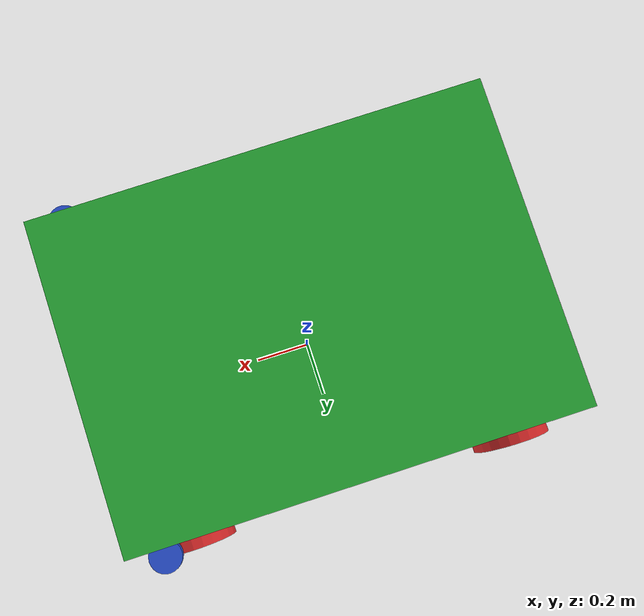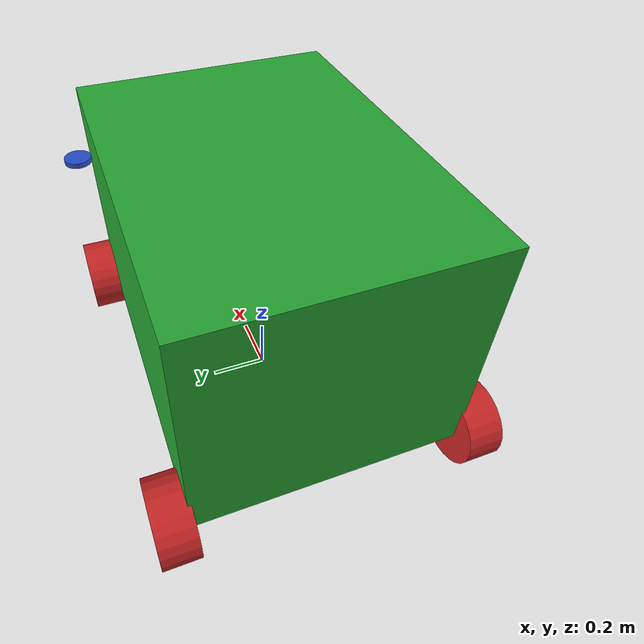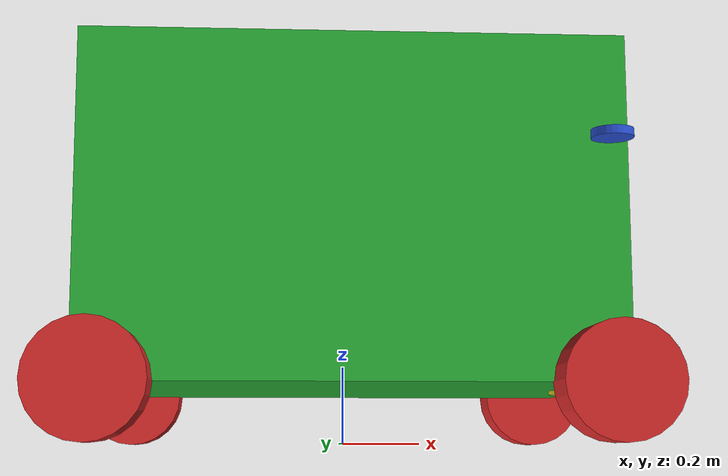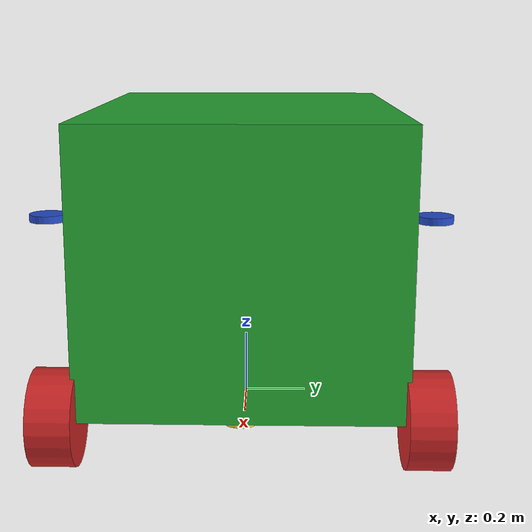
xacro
<?xml version="1.0"?>
<robot name="steer_bot" xmlns:xacro="http://wiki.ros.org/xacro">
  <!-- Include xacro for inertials, materials and wheels -->
  <xacro:include filename="wheel.xacro"/>
  <xacro:include filename="inertial_macros.xacro"/>

  <xacro:property name="robot_namespace" value="/steer_bot"/>

  <!-- Gazebo plugins -->
  <gazebo>
    <!-- Load ros_control plugin using the steer_bot_hardware_gazebo
    implementation of the hardware_interface::RobotHW -->
    <plugin name="gazebo_ros_control" filename="libgazebo_ros_control.so">
      <robotNamespace>${robot_namespace}</robotNamespace>
      <robotSimType>steer_bot_hardware_gazebo/SteerBotHardwareGazebo</robotSimType>
      <legacyModeNS>true</legacyModeNS>
    </plugin>
  </gazebo>

  <!-- Math constants -->
  <xacro:property name="deg_to_rad" value="0.01745329251994329577"/>

  <!-- Robot base dimensions -->
  <xacro:property name="base_length" value="1.3" />
  <xacro:property name="base_width" value="0.94" />
  <xacro:property name="base_height" value="0.83" />
  <xacro:property name="base_mass" value="35" />
  <xacro:property name="PI" value="3.1415926535897931"/>

  <!-- Wheel link dimensions -->
  <xacro:property name="wheel_radius" value="0.1397" />
  <xacro:property name="wheel_thickness" value="0.125" />
  <xacro:property name="wheel_mass" value="8" />

  <!-- Steering link dimensions -->
  <xacro:property name="steer_radius" value="0.05" />
  <xacro:property name="steer_thickness" value="0.02" />
  <xacro:property name="steer_mass" value="1" />

  <!-- Axle positions -->
  <xacro:property name="axle_offset" value="0.05" />
  <xacro:property name="steer_offset" value="0.02" />
  <xacro:property name="wheel_offset_x" value="0.226"/>
  <xacro:property name="wheel_offset_y" value="0.1485"/>
  <xacro:property name="wheel_offset_z" value="0.01"/>

  <!-- BASE LINK -->

  <link name="base_link">
  </link>

  <!-- BASE_FOOTPRINT LINK -->

  <joint name="base_footprint_joint" type="fixed">
      <parent link="base_link"/>
      <child link="base_footprint"/>
      <origin xyz="0 0 0" rpy="0 0 0"/>
  </joint>

  <link name="base_footprint">
  </link>

  <link name="chassis_link">
    <visual>
      <origin xyz="0 0 0" rpy="0 0 0"/>
      <geometry>
        <box size="${base_length} ${base_width} ${base_height}"/>
      </geometry>
      <material name="green" />
    </visual>
    <collision>
      <origin xyz="0 0 0" rpy="0 0 0"/>
      <geometry>
        <box size="${base_length} ${base_width} ${base_height}"/>
      </geometry>
      <contact>
        <ode>
          <mu>20</mu>
          <mu2>20</mu2>
        </ode>
      </contact>

    </collision>
    <xacro:solid_cuboid_inertial
        rpy="0 0 0" xyz="0 0 0"
        mass="${base_mass}"
        x="${base_length}" y="${base_width}" z="${base_height}" />
  </link>
  <joint name="chassis_joint" type="fixed">
    <parent link="base_link"/>
    <child link="chassis_link"/>
     <origin xyz="0 0 ${base_height/2+ wheel_radius}" />
  </joint>

  <!-- Front steer and rear wheel joints required for ackermann_steering_controller -->
  <xacro:front_steer
    name="front"
    parent="chassis"
    steer_radius="${steer_radius}"
    steer_thickness="${steer_thickness}"
    steer_mass="${steer_mass}"
    base_length="${base_length}"
    base_width="${base_width}"
    axle_offset="${axle_offset}"
    steer_height="${wheel_radius+steer_offset}">
  </xacro:front_steer>

  <xacro:rear_wheel
    name="rear"
    parent="chassis"
    wheel_radius="${wheel_radius/4}"
    wheel_thickness="${wheel_thickness/2}"
    wheel_mass="${wheel_mass/32}">
    <origin xyz="${-base_length/2+axle_offset} 0  ${-base_height/2}" rpy="${-90 * deg_to_rad} 0 0"/>
  </xacro:rear_wheel>

  <!-- Steerable front wheels -->
  <xacro:front_wheel_lr
    name="front_right"
    parent="chassis"
    reflect="-1"
    wheel_radius="${wheel_radius}"
    wheel_thickness="${wheel_thickness}"
    wheel_mass="${wheel_mass}"
    steer_radius="${steer_radius}"
    steer_thickness="${steer_thickness}"
    steer_mass="${steer_mass}"
    base_length="${base_length}"
    base_width="${base_width}"
    axle_offset="${axle_offset}"
    steer_height="${wheel_radius+steer_offset}">
  </xacro:front_wheel_lr>
  <xacro:front_wheel_lr
    name="front_left"
    parent="chassis"
    reflect="1"
    wheel_radius="${wheel_radius}"
    wheel_thickness="${wheel_thickness}"
    wheel_mass="${wheel_mass}"
    steer_radius="${steer_radius}"
    steer_thickness="${steer_thickness}"
    steer_mass="${steer_mass}"
    base_length="${base_length}"
    base_width="${base_width}"
    axle_offset="${axle_offset}"
    steer_height="${wheel_radius+steer_offset}">
  </xacro:front_wheel_lr>

  <!-- Rear wheels -->
  <xacro:rear_wheel_lr
    name="rear_right"
    parent="chassis"
    wheel_radius="${wheel_radius}"
    wheel_thickness="${wheel_thickness}"
    wheel_mass="${wheel_mass}">
    <origin xyz="${-base_length/2+axle_offset} ${-base_width/2-axle_offset} ${-base_height/2}" rpy="${-90 * deg_to_rad} 0 0"/>
  </xacro:rear_wheel_lr>
  <xacro:rear_wheel_lr
    name="rear_left"
    parent="chassis"
    wheel_radius="${wheel_radius}"
    wheel_thickness="${wheel_thickness}"
    wheel_mass="${wheel_mass}">
    <origin xyz="${-base_length/2+axle_offset} ${+base_width/2+axle_offset} ${-base_height/2}" rpy="${-90 * deg_to_rad} 0 0"/>
  </xacro:rear_wheel_lr>

  <!-- Colour -->
  <gazebo reference="base_link">
    <material>Gazebo/Green</material>
  </gazebo>

</robot>

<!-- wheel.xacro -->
<robot name="wheel" xmlns:xacro="http://wiki.ros.org/xacro">
  <!-- Include xacro for materials and inertials -->
  <xacro:include filename="materials.xacro"/>
  <xacro:include filename="inertials.xacro"/>

  <!-- Properties -->
  <xacro:property name="steer_effort" value="50000.0"/>
  <xacro:property name="steer_velocity" value="50.0"/>
  <xacro:property name="steer_limit_deg" value="45.0"/>

  <!-- Bicycle model front steering link (required for steer_drive_controller) -->
  <xacro:macro name="front_steer"
    params="
      name
      parent
      steer_radius
      steer_thickness
      steer_mass
      base_length
      base_width
      axle_offset
      steer_height">
    <link name="${name}_steer_link">
      <visual>
        <origin xyz="0 0 0" rpy="0 0 0"/>
        <geometry>
          <cylinder radius="${steer_radius}" length="${steer_thickness}"/>
        </geometry>
        <material name="yellow" />
      </visual>
      <collision>
        <origin xyz="0 0 0" rpy="0 0 0"/>
        <geometry>
          <cylinder radius="${steer_radius}" length="${steer_thickness}"/>
        </geometry>
      </collision>
      <xacro:solid_cylinder_inertial
          rpy="0 0 0" xyz="0 0 0"
          mass="${steer_mass}"
          radius="${steer_radius}" length="${steer_thickness}" />
    </link>

    <joint name="${name}_steer_joint" type="revolute">
      <parent link="${parent}_link"/>
      <child link="${name}_steer_link"/>
      <origin xyz="${base_length/2-axle_offset} 0 ${-base_height/2}" rpy="0 0 0"/>
      <axis xyz="0 0 1"/>
      <limit effort="${steer_effort}"
             lower="${-180.0 * deg_to_rad}" upper="${180.0 * deg_to_rad}"
             velocity="${steer_velocity}"/>
    </joint>

    <transmission name="${name}_steer_joint_trans">
      <type>transmission_interface/SimpleTransmission</type>
      <actuator name="${name}_steer_joint_motor">
        <mechanicalReduction>1</mechanicalReduction>
        <hardwareInterface>hardware_interface/PositionJointInterface</hardwareInterface>
      </actuator>
      <joint name="${name}_steer_joint">
        <hardwareInterface>hardware_interface/PositionJointInterface</hardwareInterface>
      </joint>
    </transmission>

    <gazebo reference="${name}_steer_link">
      <material>Gazebo/Yellow</material>

    </gazebo>
  </xacro:macro>

  <!-- Car steering model front (steerable) wheel links (left/right) -->
  <xacro:macro name="front_wheel_lr"
    params="
      name
      parent
      reflect
      wheel_radius
      wheel_thickness
      wheel_mass
      steer_radius
      steer_thickness
      steer_mass
      base_length
      base_width
      axle_offset
      steer_height">
    <link name="${name}_steer_link">
      <visual>
        <origin xyz="0 0 0" rpy="0 0 0"/>
        <geometry>
          <cylinder radius="${steer_radius}" length="${steer_thickness}"/>
        </geometry>
        <material name="blue" />
      </visual>
      <collision>
        <origin xyz="0 0 0" rpy="0 0 0"/>
        <geometry>
          <cylinder radius="${steer_radius}" length="${steer_thickness}"/>
        </geometry>
        <contact>
          <ode>
            <mu>20</mu>
            <mu2>20</mu2>
          </ode>
        </contact>
      </collision>
      <xacro:solid_cylinder_inertial
          rpy="0 0 0" xyz="0 0 0"
          mass="${steer_mass}"
          radius="${steer_radius}" length="${steer_thickness}" />
    </link>

    <joint name="${name}_steer_joint" type="revolute">
      <parent link="${parent}_link"/>
      <child link="${name}_steer_link"/>
      <origin xyz="${base_length/2-axle_offset} ${reflect*(base_width/2+axle_offset)} ${steer_height}" rpy="0 0 0"/>
      <axis xyz="0 0 1"/>
      <limit effort="${steer_effort}"
             lower="${steer_limit_deg * deg_to_rad * -1.0}" upper="${steer_limit_deg * deg_to_rad}"
             velocity="${steer_velocity}"/>
    </joint>

    <link name="${name}_wheel_link">
      <visual>
        <origin xyz="0 0 0" rpy="0 0 0"/>
        <geometry>
          <cylinder radius="${wheel_radius}" length="${wheel_thickness}"/>
        </geometry>
        <material name="red" />
      </visual>
      <collision>
        <origin xyz="0 0 0" rpy="0 0 0"/>
        <geometry>
          <cylinder radius="${wheel_radius}" length="${wheel_thickness}"/>
        </geometry>
        <contact>
          <ode>
            <mu>20</mu>
            <mu2>20</mu2>
          </ode>
        </contact>
      </collision>
      <xacro:solid_cylinder_inertial
          rpy="0 0 0" xyz="0 0 0"
          mass="${wheel_mass}"
          radius="${wheel_radius}" length="${wheel_thickness}" />
    </link>

    <joint name="${name}_wheel_joint" type="continuous">
      <parent link="${name}_steer_link"/>
      <child link="${name}_wheel_link"/>
      <origin xyz="0 0 ${-steer_height-base_height/2}" rpy="${-90 * deg_to_rad} 0 0"/>
      <axis xyz="0 0 1"/>
    </joint>

    <transmission name="${name}_steer_joint_trans">
      <type>transmission_interface/SimpleTransmission</type>
      <actuator name="${name}_steer_joint_motor">
        <mechanicalReduction>1</mechanicalReduction>
        <hardwareInterface>hardware_interface/PositionJointInterface</hardwareInterface>
      </actuator>
      <joint name="${name}_steer_joint">
        <hardwareInterface>hardware_interface/PositionJointInterface</hardwareInterface>
      </joint>
    </transmission>

    <transmission name="${name}_wheel_joint_trans">
      <type>transmission_interface/SimpleTransmission</type>
      <actuator name="${name}_wheel_joint_motor">
        <mechanicalReduction>1</mechanicalReduction>
        <hardwareInterface>hardware_interface/VelocityJointInterface</hardwareInterface>
      </actuator>
      <joint name="${name}_wheel_joint">
        <hardwareInterface>hardware_interface/VelocityJointInterface</hardwareInterface>
      </joint>
    </transmission>

    <gazebo reference="${name}_steer_link">
      <material>Gazebo/Blue</material>
    </gazebo>

    <gazebo reference="${name}_wheel_link">
      <material>Gazebo/Red</material>
    </gazebo>
  </xacro:macro>

  <!-- Bicycle model rear wheel link (required for steer_drive_controller) -->
  <xacro:macro name="rear_wheel"
    params="
      name
      parent
      wheel_radius
      wheel_thickness
      wheel_mass
      *origin">
    <link name="${name}_wheel_link">
      <visual>
        <origin xyz="0 0 0" rpy="0 0 0"/>
        <geometry>
          <cylinder radius="${wheel_radius}" length="${wheel_thickness}"/>
        </geometry>
        <material name="yellow" />
      </visual>
      <collision>
        <origin xyz="0 0 0" rpy="0 0 0"/>
        <geometry>
          <cylinder radius="${wheel_radius}" length="${wheel_thickness}"/>
        </geometry>
        <contact>
          <ode>
            <mu>20</mu>
            <mu2>20</mu2>
          </ode>
        </contact>
      </collision>
      <xacro:solid_cylinder_inertial
          rpy="0 0 0" xyz="0 0 0"
          mass="${wheel_mass}"
          radius="${wheel_radius}" length="${wheel_thickness}" />
    </link>

    <joint name="${name}_wheel_joint" type="continuous">
      <parent link="${parent}_link"/>
      <child link="${name}_wheel_link"/>
      <xacro:insert_block name="origin"/>
      <axis xyz="0 0 1"/>
    </joint>

    <transmission name="${name}_wheel_joint_trans">
      <type>transmission_interface/SimpleTransmission</type>
      <actuator name="${name}_wheel_joint_motor">
        <mechanicalReduction>1</mechanicalReduction>
        <hardwareInterface>hardware_interface/VelocityJointInterface</hardwareInterface>
      </actuator>
      <joint name="${name}_wheel_joint">
        <hardwareInterface>hardware_interface/VelocityJointInterface</hardwareInterface>
      </joint>
    </transmission>

    <gazebo reference="${name}_wheel_link">
      <material>Gazebo/Yellow</material>
    </gazebo>
  </xacro:macro>

  <!-- Bicycle model front wheel link (passive - no transmission) -->
  <xacro:macro name="front_wheel"
    params="
      name
      parent
      wheel_radius
      wheel_thickness
      wheel_mass
      *origin">
    <link name="${name}_wheel_link">
      <visual>
        <origin xyz="0 0 0" rpy="0 0 0"/>
        <geometry>
          <cylinder radius="${wheel_radius}" length="${wheel_thickness}"/>
        </geometry>
        <material name="yellow" />
      </visual>
      <collision>
        <origin xyz="0 0 0" rpy="0 0 0"/>
        <geometry>
          <cylinder radius="${wheel_radius}" length="${wheel_thickness}"/>
        </geometry>
        <contact>
          <ode>
            <mu>20</mu>
            <mu2>20</mu2>
          </ode>
        </contact>
      </collision>
      <xacro:solid_cylinder_inertial
          rpy="0 0 0" xyz="0 0 0"
          mass="${wheel_mass}"
          radius="${wheel_radius}" length="${wheel_thickness}" />
    </link>

    <joint name="${name}_wheel_joint" type="continuous">
      <parent link="${parent}_link"/>
      <child link="${name}_wheel_link"/>
      <xacro:insert_block name="origin"/>
      <axis xyz="0 0 1"/>
    </joint>

    <gazebo reference="${name}_wheel_link">
      <material>Gazebo/Yellow</material>
    </gazebo>

    <gazebo reference="${name}_wheel_joint">
      <provideFeedback>true</provideFeedback>
    </gazebo>
  </xacro:macro>

  <!-- Car steering model rear wheel links (left/right) -->
  <xacro:macro name="rear_wheel_lr"
    params="
      name
      parent
      wheel_radius
      wheel_thickness
      wheel_mass
      *origin">
    <link name="${name}_wheel_link">
      <visual>
        <origin xyz="0 0 0" rpy="0 0 0"/>
        <geometry>
          <cylinder radius="${wheel_radius}" length="${wheel_thickness}"/>
        </geometry>
        <material name="red" />
      </visual>
      <collision>
        <origin xyz="0 0 0" rpy="0 0 0"/>
        <geometry>
          <cylinder radius="${wheel_radius}" length="${wheel_thickness}"/>
        </geometry>
        <contact>
          <ode>
            <mu>20</mu>
            <mu2>20</mu2>
          </ode>
        </contact>
      </collision>
      <xacro:solid_cylinder_inertial
          rpy="0 0 0" xyz="0 0 0"
          mass="${wheel_mass}"
          radius="${wheel_radius}" length="${wheel_thickness}" />
    </link>

    <joint name="${name}_wheel_joint" type="continuous">
      <parent link="${parent}_link"/>
      <child link="${name}_wheel_link"/>
      <xacro:insert_block name="origin"/>
      <axis xyz="0 0 1"/>
    </joint>

    <transmission name="${name}_wheel_joint_trans">
      <type>transmission_interface/SimpleTransmission</type>
      <actuator name="${name}_wheel_joint_motor">
        <mechanicalReduction>1</mechanicalReduction>
        <hardwareInterface>hardware_interface/VelocityJointInterface</hardwareInterface>
      </actuator>
      <joint name="${name}_wheel_joint">
        <hardwareInterface>hardware_interface/VelocityJointInterface</hardwareInterface>
      </joint>
    </transmission>

    <gazebo reference="${name}_wheel_link">
      <material>Gazebo/Red</material>
    </gazebo>
  </xacro:macro>
</robot>
